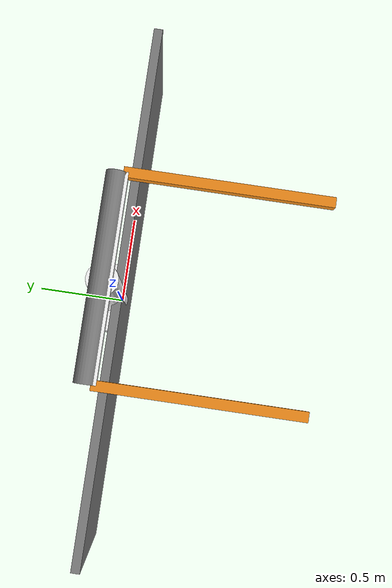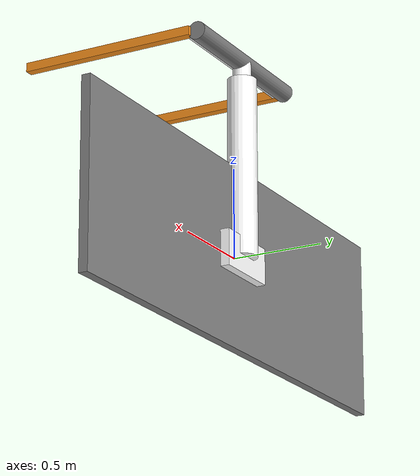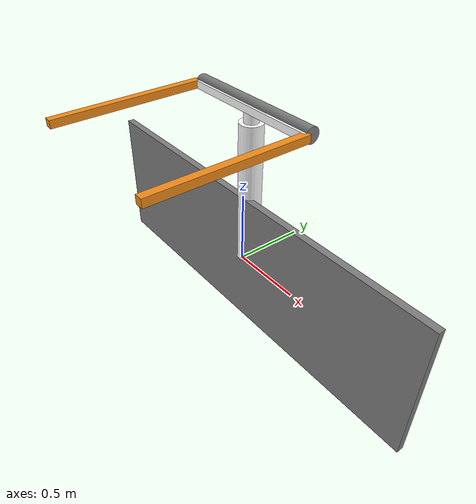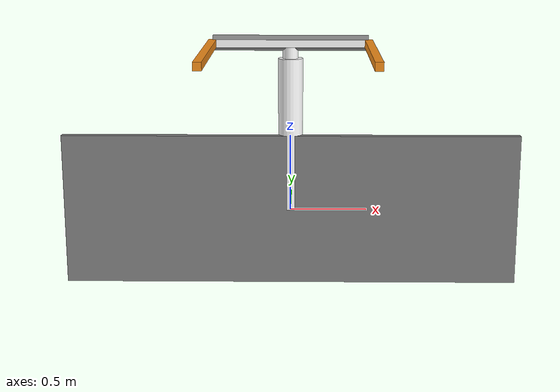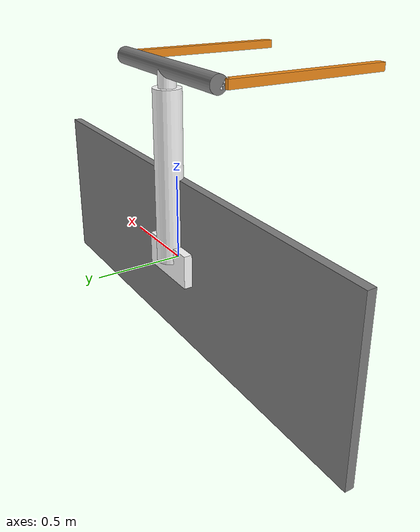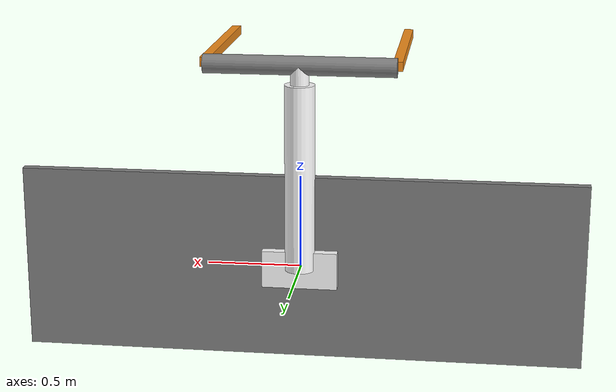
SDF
<sdf version='1.11'>
  <model name='garbagebot_arm'>
    <link name='base_link'>
      <pose relative_to='__model__'>0 0 0 0 0 0</pose>
      <inertial>
        <pose>0 0 0 0 0 0</pose>
        <mass>50</mass>
        <inertia>
          <ixx>0.01</ixx> <iyy>0.01</iyy> <izz>0.01</izz>
          <ixy>0.0</ixy> <ixz>0.0</ixz> <iyz>0.0</iyz>
        </inertia>
      </inertial>
      <collision name='base_link_collision'>
        <pose>0 0 0 0 0 0</pose>
        <geometry>
          <box>
            <size>3 0.050000000000000003 1</size>
          </box>
        </geometry>
        <surface>
          <contact>
            <ode/>
          </contact>
          <friction>
            <ode/>
          </friction>
        </surface>
      </collision>
      <collision name='base_link_fixed_joint_lump__link1_collision_1'>
        <pose>0 0 0 0 0 0</pose>
        <geometry>
          <box>
            <size>3 0.050000000000000003 1</size>
          </box>
        </geometry>
        <surface>
          <contact>
            <ode/>
          </contact>
          <friction>
            <ode/>
          </friction>
        </surface>
      </collision>
      <visual name='base_link_visual'>
        <pose>0 0 0 0 0 0</pose>
        <geometry>
          <box>
            <size>3 0.050000000000000003 1</size>
          </box>
        </geometry>
        <material>
          <ambient>0.5 0.5 0.5 1</ambient>
          <diffuse>0.5 0.5 0.5 1</diffuse>
          <specular>0.5 0.5 0.5 1</specular>
        </material>
      </visual>
      <visual name='base_link_fixed_joint_lump__link1_visual_1'>
        <pose>0 0 0 0 0 0</pose>
        <geometry>
          <box>
            <size>3 0.050000000000000003 1</size>
          </box>
        </geometry>
        <material>
          <ambient>0.5 0.5 0.5 1</ambient>
          <diffuse>0.5 0.5 0.5 1</diffuse>
          <specular>0.5 0.5 0.5 1</specular>
        </material>
      </visual>
    </link>
    <joint name='link1_to_link2' type='prismatic'>
      <pose relative_to='base_link'>0 0 0 0 0 0</pose>
      <parent>base_link</parent>
      <child>link2</child>
      <axis>
        <xyz>1 0 0</xyz>
        <limit>
          <lower>-1</lower>
          <upper>1</upper>
          <effort>50000</effort>
          <velocity>4.0</velocity>
        </limit>
        <dynamics>
          <damping>1</damping>
          <friction>1</friction>
          <spring_reference>0</spring_reference>
          <spring_stiffness>0</spring_stiffness>
        </dynamics>
      </axis>
    </joint>
    <link name='link2'>
      <pose relative_to='link1_to_link2'>0 0 0 0 0 0</pose>
      <inertial>
        <pose>0 0 0 0 0 0</pose>
        <mass>50</mass>
        <inertia>
          <ixx>0.01</ixx> <iyy>0.01</iyy> <izz>0.01</izz>
          <ixy>0.0</ixy> <ixz>0.0</ixz> <iyz>0.0</iyz>
        </inertia>
      </inertial>
      <collision name='link2_collision'>
        <pose>0 0.050000000000000003 0 0 0 0</pose>
        <geometry>
          <box>
            <size>0.40000000000000002 0.050000000000000003 0.20000000000000001</size>
          </box>
        </geometry>
        <surface>
          <contact>
            <ode/>
          </contact>
          <friction>
            <ode/>
          </friction>
        </surface>
      </collision>
      <visual name='link2_visual'>
        <pose>0 0.050000000000000003 0 0 0 0</pose>
        <geometry>
          <box>
            <size>0.40000000000000002 0.050000000000000003 0.20000000000000001</size>
          </box>
        </geometry>
        <material>
          <ambient>1 1 1 1</ambient>
          <diffuse>1 1 1 1</diffuse>
          <specular>1 1 1 1</specular>
        </material>
      </visual>
    </link>
    <joint name='link2_to_link3' type='revolute'>
      <pose relative_to='link2'>0 0.050000000000000003 0 1.5707963267948959 0 0</pose>
      <parent>link2</parent>
      <child>link3</child>
      <axis>
        <xyz>-1 0 0</xyz>
        <limit>
          <lower>0</lower>
          <upper>1.571</upper>
          <effort>50000</effort>
          <velocity>10.0</velocity>
        </limit>
        <dynamics>
          <damping>1</damping>
          <friction>0.5</friction>
          <spring_reference>0</spring_reference>
          <spring_stiffness>0</spring_stiffness>
        </dynamics>
      </axis>
    </joint>
    <link name='link3'>
      <pose relative_to='link2_to_link3'>0 0 0 0 0 0</pose>
      <inertial>
        <pose>0 0 0 0 0 0</pose>
        <mass>30</mass>
        <inertia>
          <ixx>0.01</ixx> <iyy>0.01</iyy> <izz>0.01</izz>
          <ixy>0.0</ixy> <ixz>0.0</ixz> <iyz>0.0</iyz>
        </inertia>
      </inertial>
      <collision name='link3_collision'>
        <pose>0 0.5 0 -1.5707963267948959 0 0</pose>
        <geometry>
          <cylinder>
            <length>1</length>
            <radius>0.080000000000000002</radius>
          </cylinder>
        </geometry>
        <surface>
          <contact>
            <ode/>
          </contact>
          <friction>
            <ode/>
          </friction>
        </surface>
      </collision>
      <visual name='link3_visual'>
        <pose>0 0.5 0 -1.5707963267948959 0 0</pose>
        <geometry>
          <cylinder>
            <length>1</length>
            <radius>0.080000000000000002</radius>
          </cylinder>
        </geometry>
        <material>
          <ambient>1 1 1 1</ambient>
          <diffuse>1 1 1 1</diffuse>
          <specular>1 1 1 1</specular>
        </material>
      </visual>
    </link>
    <joint name='link3_to_link4' type='prismatic'>
      <pose relative_to='link3'>0 0.10000000000000001 0 0 0 0</pose>
      <parent>link3</parent>
      <child>link4</child>
      <axis>
        <xyz>0 1 0</xyz>
        <limit>
          <lower>0</lower>
          <upper>0.80000000000000004</upper>
          <effort>50000</effort>
          <velocity>2.0</velocity>
        </limit>
        <dynamics>
          <damping>0.5</damping>
          <friction>0.5</friction>
          <spring_reference>0</spring_reference>
          <spring_stiffness>0</spring_stiffness>
        </dynamics>
      </axis>
    </joint>
    <link name='link4'>
      <pose relative_to='link3_to_link4'>0 0 0 0 0 0</pose>
      <inertial>
        <pose>0 0 0 0 0 0</pose>
        <mass>5</mass>
        <inertia>
          <ixx>0.01</ixx> <iyy>0.01</iyy> <izz>0.01</izz>
          <ixy>0.0</ixy> <ixz>0.0</ixz> <iyz>0.0</iyz>
        </inertia>
      </inertial>
      <collision name='link4_collision'>
        <pose>0 0.5 0 -1.570796326794897 -1.5707963267948966 0</pose>
        <geometry>
          <cylinder>
            <length>1</length>
            <radius>0.050000000000000003</radius>
          </cylinder>
        </geometry>
        <surface>
          <contact>
            <ode/>
          </contact>
          <friction>
            <ode/>
          </friction>
        </surface>
      </collision>
      <visual name='link4_visual'>
        <pose>0 0.5 0 -1.570796326794897 -1.5707963267948966 0</pose>
        <geometry>
          <cylinder>
            <length>1</length>
            <radius>0.050000000000000003</radius>
          </cylinder>
        </geometry>
        <material>
          <ambient>1 1 1 1</ambient>
          <diffuse>1 1 1 1</diffuse>
          <specular>1 1 1 1</specular>
        </material>
      </visual>
    </link>
    <joint name='link4_to_link6_flange' type='revolute'>
      <pose relative_to='link4'>0 1 0 0 0 0</pose>
      <parent>link4</parent>
      <child>link6_flange</child>
      <axis>
        <xyz>-1 0 0</xyz>
        <limit>
          <lower>0</lower>
          <upper>2</upper>
          <effort>5000</effort>
          <velocity>3.0</velocity>
        </limit>
        <dynamics>
          <damping>0.1</damping>
          <friction>0.1</friction>
          <spring_reference>0</spring_reference>
          <spring_stiffness>0</spring_stiffness>
        </dynamics>
      </axis>
    </joint>
    <link name='link6_flange'>
      <pose relative_to='link4_to_link6_flange'>0 0 0 0 0 0</pose>
      <inertial>
        <pose>0 0 0.022666666666666668 0 0 0</pose>
        <mass>10</mass>
        <inertia>
          <ixx>0.01</ixx> <iyy>0.01</iyy> <izz>0.01</izz>
          <ixy>0.0</ixy> <ixz>0.0</ixz> <iyz>0.0</iyz>
        </inertia>
      </inertial>
      <collision name='link6_flange_collision'>
        <pose>0 0 0 0 -1.5707963267948966 0</pose>
        <geometry>
          <cylinder>
            <length>1</length>
            <radius>0.050000000000000003</radius>
          </cylinder>
        </geometry>
        <surface>
          <contact>
            <ode/>
          </contact>
          <friction>
            <ode/>
          </friction>
        </surface>
      </collision>
      <collision name='link6_flange_fixed_joint_lump__gripper_base_collision_1'>
        <pose>0 0 0.034000000000000002 1.579 0 0</pose>
        <geometry>
          <box>
            <size>1 0.050000000000000003 0.050000000000000003</size>
          </box>
        </geometry>
        <surface>
          <contact>
            <ode/>
          </contact>
          <friction>
            <ode/>
          </friction>
        </surface>
      </collision>
      <visual name='link6_flange_visual'>
        <pose>0 0 0 0 -1.5707963267948966 0</pose>
        <geometry>
          <cylinder>
            <length>1</length>
            <radius>0.050000000000000003</radius>
          </cylinder>
        </geometry>
        <material>
          <ambient>0.5 0.5 0.5 1</ambient>
          <diffuse>0.5 0.5 0.5 1</diffuse>
          <specular>0.5 0.5 0.5 1</specular>
        </material>
      </visual>
      <visual name='link6_flange_fixed_joint_lump__gripper_base_visual_1'>
        <pose>0 0 0.034000000000000002 1.579 0 0</pose>
        <geometry>
          <box>
            <size>1 0.050000000000000003 0.050000000000000003</size>
          </box>
        </geometry>
        <material>
          <ambient>1 1 1 1</ambient>
          <diffuse>1 1 1 1</diffuse>
          <specular>1 1 1 1</specular>
        </material>
      </visual>
    </link>
    <joint name='gripper_base_to_gripper_left' type='prismatic'>
      <pose relative_to='link6_flange'>0 0 0.034000000000000002 1.579 0 0</pose>
      <parent>link6_flange</parent>
      <child>gripper_left</child>
      <axis>
        <xyz>1 0 0</xyz>
        <limit>
          <lower>0</lower>
          <upper>0.5</upper>
          <effort>50000</effort>
          <velocity>4.0</velocity>
        </limit>
        <dynamics>
          <damping>1</damping>
          <friction>1</friction>
          <spring_reference>0</spring_reference>
          <spring_stiffness>0</spring_stiffness>
        </dynamics>
      </axis>
    </joint>
    <link name='gripper_left'>
      <pose relative_to='gripper_base_to_gripper_left'>0 0 0 0 0 0</pose>
      <inertial>
        <pose>0 0 0 0 0 0</pose>
        <mass>10</mass>
        <inertia>
          <ixx>0.01</ixx> <iyy>0.01</iyy> <izz>0.01</izz>
          <ixy>0.0</ixy> <ixz>0.0</ixz> <iyz>0.0</iyz>
        </inertia>
      </inertial>
      <collision name='gripper_left_collision'>
        <pose>-0.5 0.5 0 0 0 0</pose>
        <geometry>
          <box>
            <size>0.050000000000000003 1 0.050000000000000003</size>
          </box>
        </geometry>
        <surface>
          <friction>
            <ode>
              <mu>50.0</mu>
              <mu2>50.0</mu2>
            </ode>
          </friction>
          <contact>
            <ode>
              <soft_cfm>0.5</soft_cfm>
              <soft_erp>0.2</soft_erp>
            </ode>
          </contact>
        </surface>
      </collision>
      <visual name='gripper_left_visual'>
        <pose>-0.5 0.5 0 0 0 0</pose>
        <geometry>
          <box>
            <size>0.050000000000000003 1 0.050000000000000003</size>
          </box>
        </geometry>
        <material>
          <script>
            <uri>file://media/materials/scripts/gazebo.material</uri>
            <name>Gazebo/Orange</name>
          </script>
        </material>
      </visual>
    </link>
    <joint name='gripper_base_to_gripper_right' type='prismatic'>
      <pose relative_to='link6_flange'>0 0 0.034000000000000002 1.579 0 0</pose>
      <parent>link6_flange</parent>
      <child>gripper_right</child>
      <axis>
        <xyz>-1 0 0</xyz>
        <limit>
          <lower>0</lower>
          <upper>0.5</upper>
          <effort>50000</effort>
          <velocity>4.0</velocity>
        </limit>
        <dynamics>
          <damping>1</damping>
          <friction>1</friction>
          <spring_reference>0</spring_reference>
          <spring_stiffness>0</spring_stiffness>
        </dynamics>
      </axis>
    </joint>
    <link name='gripper_right'>
      <pose relative_to='gripper_base_to_gripper_right'>0 0 0 0 0 0</pose>
      <inertial>
        <pose>0 0 0 0 0 0</pose>
        <mass>10</mass>
        <inertia>
          <ixx>0.01</ixx> <iyy>0.01</iyy> <izz>0.01</izz>
          <ixy>0.0</ixy> <ixz>0.0</ixz> <iyz>0.0</iyz>
        </inertia>
      </inertial>
      <collision name='gripper_right_collision'>
        <pose>0.5 0.5 0 0 0 0</pose>
        <geometry>
          <box>
            <size>0.050000000000000003 1 0.050000000000000003</size>
          </box>
        </geometry>
        <surface>
          <friction>
            <ode>
              <mu>50.0</mu>
              <mu2>50.0</mu2>
            </ode>
          </friction>
          <contact>
            <ode>
              <soft_cfm>0.5</soft_cfm>
              <soft_erp>0.2</soft_erp>
            </ode>
          </contact>
        </surface>
      </collision>
      <visual name='gripper_right_visual'>
        <pose>0.5 0.5 0 0 0 0</pose>
        <geometry>
          <box>
            <size>0.050000000000000003 1 0.050000000000000003</size>
          </box>
        </geometry>
        <material>
          <script>
            <uri>file://media/materials/scripts/gazebo.material</uri>
            <name>Gazebo/Orange</name>
          </script>
        </material>
      </visual>
    </link>
    <frame name='base_link_to_link1' attached_to='base_link'>
      <pose>0 0 0 0 0 0</pose>
    </frame>
    <frame name='link1' attached_to='base_link_to_link1'>
      <pose>0 0 0 0 0 0</pose>
    </frame>
    <frame name='link6_flange_to_gripper_base' attached_to='link6_flange'>
      <pose>0 0 0.034000000000000002 1.579 0 0</pose>
    </frame>
    <frame name='gripper_base' attached_to='link6_flange_to_gripper_base'>
      <pose>0 0 0 0 0 0</pose>
    </frame>

  <plugin
    filename="gz-sim-joint-state-publisher-system"
    name="gz::sim::systems::JointStatePublisher">
    <topic>joint_states</topic>
    <update_rate>5</update_rate>
  </plugin>
  </model>
</sdf>
